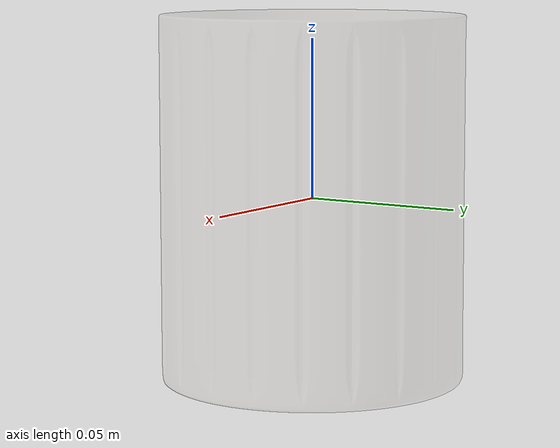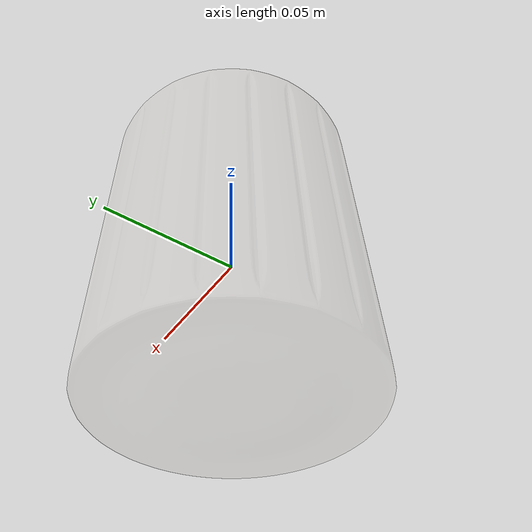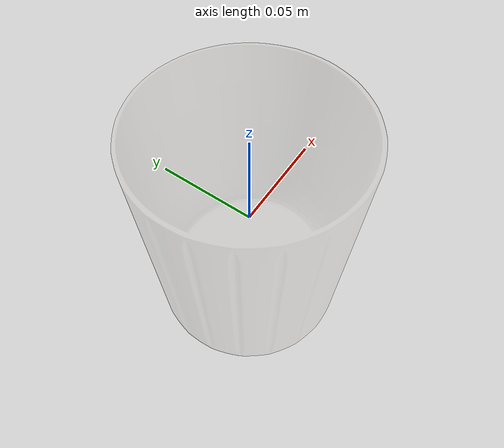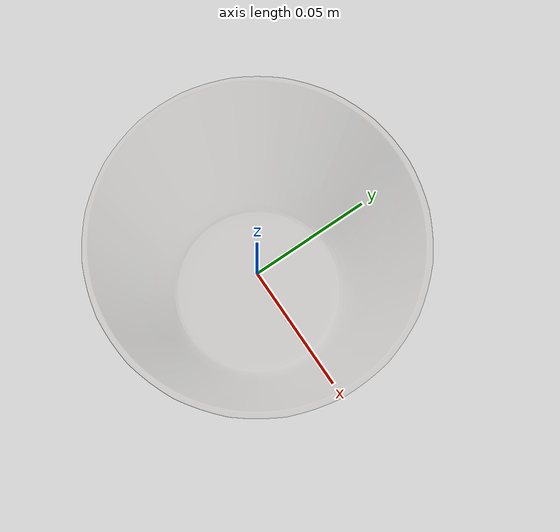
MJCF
<mujoco model="model">
  <option timestep="0.002" gravity="0.0 0.0 -9.81"/>
  <compiler angle="radian"/>
  <asset>
    <mesh file="visual/Clear.obj" name="GlassCup015_Clear_vis"/>
    <texture file="visual/T_BC001.png" name="GlassCup015_Clear_material" type="2d"/>
    <material name="GlassCup015_Clear_material" rgba="1 1 1 0.20000000298023224" texture="GlassCup015_Clear_material" shininess="0.5" specular="0.3103448502657381"/>
    <mesh file="collision/collision_mesh_collision_0.obj" name="GlassCup015_collision_mesh_0"/>
    <mesh file="collision/collision_mesh_collision_1.obj" name="GlassCup015_collision_mesh_1"/>
    <mesh file="collision/collision_mesh_collision_2.obj" name="GlassCup015_collision_mesh_2"/>
    <mesh file="collision/collision_mesh_collision_3.obj" name="GlassCup015_collision_mesh_3"/>
    <mesh file="collision/collision_mesh_collision_4.obj" name="GlassCup015_collision_mesh_4"/>
    <mesh file="collision/collision_mesh_collision_5.obj" name="GlassCup015_collision_mesh_5"/>
    <mesh file="collision/collision_mesh_collision_6.obj" name="GlassCup015_collision_mesh_6"/>
    <mesh file="collision/collision_mesh_collision_7.obj" name="GlassCup015_collision_mesh_7"/>
    <mesh file="collision/collision_mesh_collision_8.obj" name="GlassCup015_collision_mesh_8"/>
    <mesh file="collision/collision_mesh_collision_9.obj" name="GlassCup015_collision_mesh_9"/>
    <mesh file="collision/collision_mesh_collision_10.obj" name="GlassCup015_collision_mesh_10"/>
    <mesh file="collision/collision_mesh_collision_11.obj" name="GlassCup015_collision_mesh_11"/>
    <mesh file="collision/collision_mesh_collision_12.obj" name="GlassCup015_collision_mesh_12"/>
    <mesh file="collision/collision_mesh_collision_13.obj" name="GlassCup015_collision_mesh_13"/>
    <mesh file="collision/collision_mesh_collision_14.obj" name="GlassCup015_collision_mesh_14"/>
    <mesh file="collision/collision_mesh_collision_15.obj" name="GlassCup015_collision_mesh_15"/>
  </asset>
  <default>
    <default class="visual">
      <geom conaffinity="0" contype="0" group="1" type="mesh"/>
    </default>
    <default class="collision">
      <geom group="3" rgba="0.5 0 0 0.5" density="1000.0"/>
    </default>
    <default class="spawn">
      <geom group="0" rgba="1 1 1 0.5" contype="0" conaffinity="0"/>
      <site group="0" rgba="1 1 1 0.5"/>
    </default>
    <default class="region">
      <geom group="1" conaffinity="0" contype="0" rgba="0 1 0 0" mass="0"/>
    </default>
  </default>
  <worldbody>
    <body>
      <body name="object">
        <geom mesh="GlassCup015_Clear_vis" type="mesh" solimp="0.998 0.998 0.001" solref="0.001 1" friction="0.95 0.3 0.1" class="visual" material="GlassCup015_Clear_material"/>
        <geom mesh="GlassCup015_collision_mesh_0" type="mesh" class="collision"/>
        <geom mesh="GlassCup015_collision_mesh_1" type="mesh" class="collision"/>
        <geom mesh="GlassCup015_collision_mesh_2" type="mesh" class="collision"/>
        <geom mesh="GlassCup015_collision_mesh_3" type="mesh" class="collision"/>
        <geom mesh="GlassCup015_collision_mesh_4" type="mesh" class="collision"/>
        <geom mesh="GlassCup015_collision_mesh_5" type="mesh" class="collision"/>
        <geom mesh="GlassCup015_collision_mesh_6" type="mesh" class="collision"/>
        <geom mesh="GlassCup015_collision_mesh_7" type="mesh" class="collision"/>
        <geom mesh="GlassCup015_collision_mesh_8" type="mesh" class="collision"/>
        <geom mesh="GlassCup015_collision_mesh_9" type="mesh" class="collision"/>
        <geom mesh="GlassCup015_collision_mesh_10" type="mesh" class="collision"/>
        <geom mesh="GlassCup015_collision_mesh_11" type="mesh" class="collision"/>
        <geom mesh="GlassCup015_collision_mesh_12" type="mesh" class="collision"/>
        <geom mesh="GlassCup015_collision_mesh_13" type="mesh" class="collision"/>
        <geom mesh="GlassCup015_collision_mesh_14" type="mesh" class="collision"/>
        <geom mesh="GlassCup015_collision_mesh_15" type="mesh" class="collision"/>
        <geom class="region" name="reg_bbox" type="box" pos="-6.399999999996686e-07 7.799999999988372e-07 0.0" size="0.047391359999999993 0.04739122 0.057378"/>
        <geom class="region" name="liquid" type="cylinder" rgba="0 0 0 0" size="0.042 0.027" pos="0.000002 0.000000 -0.0105"/>
        <geom class="region" name="reg_int" type="cylinder" rgba="0 0 0 0" size="0.034 0.05" pos="0.000002 0.000000 0.0085"/>
      </body>
    </body>
  </worldbody>
  <actuator/>
</mujoco>
